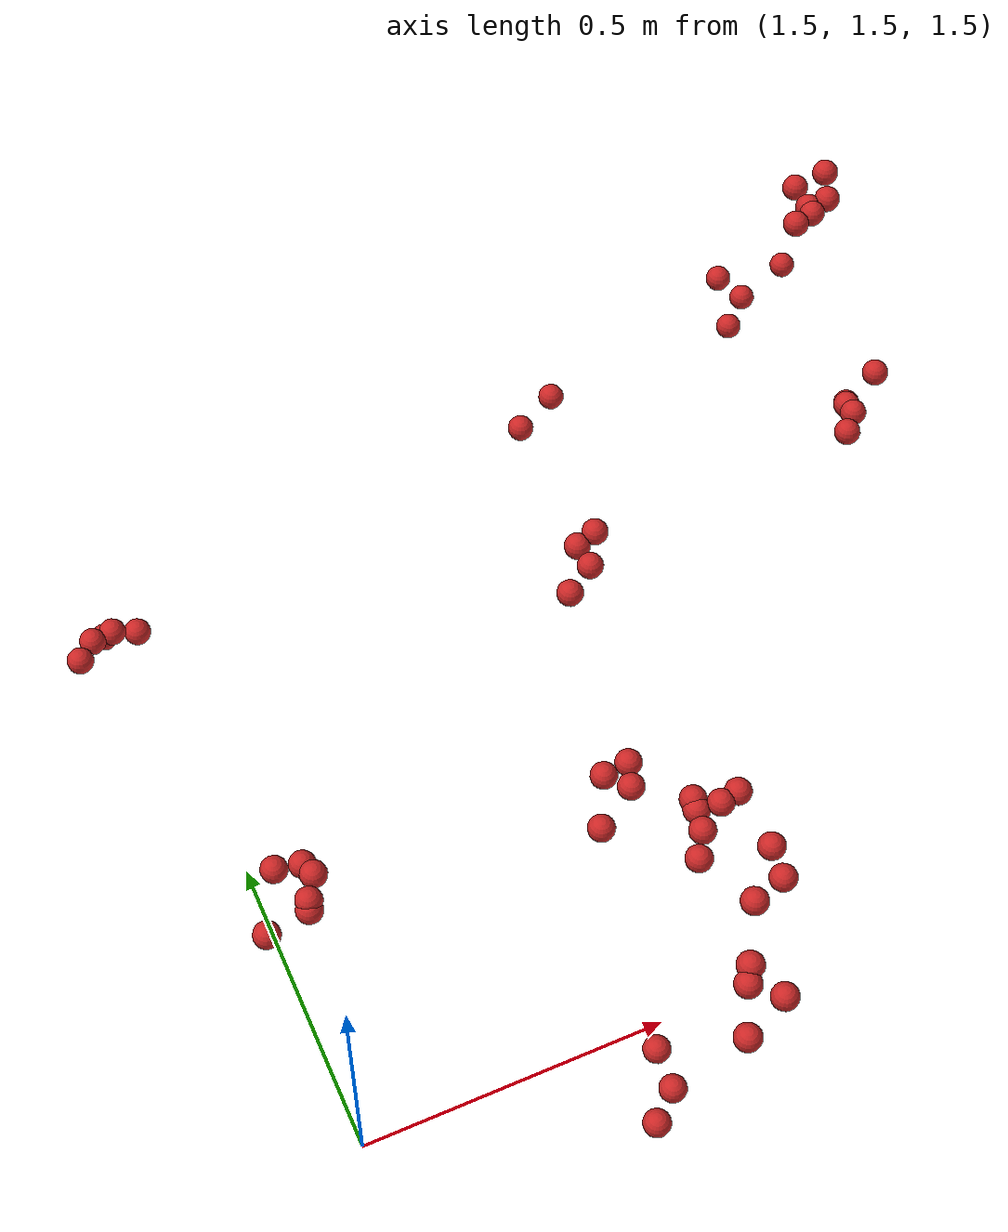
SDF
<sdf version="1.4">
 <model name="fruit_population">
  <static>true</static>
  <link name="fruit_7">
   <pose>2.6878377789477517 2.65717909088936 1.5607090375136565 0 0 0</pose>
   <collision name="fruit_collision_7"><geometry><sphere><radius>0.022</radius></sphere></geometry></collision>
   <visual name="visual">
    <geometry><sphere><radius>0.022</radius></sphere></geometry>
    <material><script><name>Gazebo/Red</name></script></material>
   </visual>
   <inertial>
    <mass>0.05</mass>
    <inertia>
     <ixx>9.679999999999999e-06</ixx>
     <ixy>0.0</ixy>
     <ixz>0.0</ixz>
     <iyy>9.679999999999999e-06</iyy>
     <iyz>0.0</iyz>
     <izz>9.679999999999999e-06</izz>
    </inertia>
   </inertial>
   <sensor name="fruit_contact_7" type="contact">
    <plugin name="contact_plugin_7" filename="libcontact_plugin.so"/>
    <contact><collision>fruit_collision_7</collision><topic>fruit_contact_topic_7</topic></contact>
   </sensor>
  </link>
  <link name="fruit_33">
   <pose>2.228750725210786 2.5594825535161543 1.6158335749436896 0 0 0</pose>
   <collision name="fruit_collision_33"><geometry><sphere><radius>0.022</radius></sphere></geometry></collision>
   <visual name="visual">
    <geometry><sphere><radius>0.022</radius></sphere></geometry>
    <material><script><name>Gazebo/Red</name></script></material>
   </visual>
   <inertial>
    <mass>0.05</mass>
    <inertia>
     <ixx>9.679999999999999e-06</ixx>
     <ixy>0.0</ixy>
     <ixz>0.0</ixz>
     <iyy>9.679999999999999e-06</iyy>
     <iyz>0.0</iyz>
     <izz>9.679999999999999e-06</izz>
    </inertia>
   </inertial>
   <sensor name="fruit_contact_33" type="contact">
    <plugin name="contact_plugin_33" filename="libcontact_plugin.so"/>
    <contact><collision>fruit_collision_33</collision><topic>fruit_contact_topic_33</topic></contact>
   </sensor>
  </link>
  <link name="fruit_36">
   <pose>2.1398747497981763 1.5151222651574094 1.7920669316583522 0 0 0</pose>
   <collision name="fruit_collision_36"><geometry><sphere><radius>0.022</radius></sphere></geometry></collision>
   <visual name="visual">
    <geometry><sphere><radius>0.022</radius></sphere></geometry>
    <material><script><name>Gazebo/Red</name></script></material>
   </visual>
   <inertial>
    <mass>0.05</mass>
    <inertia>
     <ixx>9.679999999999999e-06</ixx>
     <ixy>0.0</ixy>
     <ixz>0.0</ixz>
     <iyy>9.679999999999999e-06</iyy>
     <iyz>0.0</iyz>
     <izz>9.679999999999999e-06</izz>
    </inertia>
   </inertial>
   <sensor name="fruit_contact_36" type="contact">
    <plugin name="contact_plugin_36" filename="libcontact_plugin.so"/>
    <contact><collision>fruit_collision_36</collision><topic>fruit_contact_topic_36</topic></contact>
   </sensor>
  </link>
  <link name="fruit_49">
   <pose>2.825470624450276 2.7202413466090163 1.5991248190116685 0 0 0</pose>
   <collision name="fruit_collision_49"><geometry><sphere><radius>0.022</radius></sphere></geometry></collision>
   <visual name="visual">
    <geometry><sphere><radius>0.022</radius></sphere></geometry>
    <material><script><name>Gazebo/Red</name></script></material>
   </visual>
   <inertial>
    <mass>0.05</mass>
    <inertia>
     <ixx>9.679999999999999e-06</ixx>
     <ixy>0.0</ixy>
     <ixz>0.0</ixz>
     <iyy>9.679999999999999e-06</iyy>
     <iyz>0.0</iyz>
     <izz>9.679999999999999e-06</izz>
    </inertia>
   </inertial>
   <sensor name="fruit_contact_49" type="contact">
    <plugin name="contact_plugin_49" filename="libcontact_plugin.so"/>
    <contact><collision>fruit_collision_49</collision><topic>fruit_contact_topic_49</topic></contact>
   </sensor>
  </link>
  <link name="fruit_67">
   <pose>1.4707426005631568 1.7843473274949775 1.716479959698732 0 0 0</pose>
   <collision name="fruit_collision_67"><geometry><sphere><radius>0.022</radius></sphere></geometry></collision>
   <visual name="visual">
    <geometry><sphere><radius>0.022</radius></sphere></geometry>
    <material><script><name>Gazebo/Red</name></script></material>
   </visual>
   <inertial>
    <mass>0.05</mass>
    <inertia>
     <ixx>9.679999999999999e-06</ixx>
     <ixy>0.0</ixy>
     <ixz>0.0</ixz>
     <iyy>9.679999999999999e-06</iyy>
     <iyz>0.0</iyz>
     <izz>9.679999999999999e-06</izz>
    </inertia>
   </inertial>
   <sensor name="fruit_contact_67" type="contact">
    <plugin name="contact_plugin_67" filename="libcontact_plugin.so"/>
    <contact><collision>fruit_collision_67</collision><topic>fruit_contact_topic_67</topic></contact>
   </sensor>
  </link>
  <link name="fruit_82">
   <pose>2.692567068583775 2.720249485864434 1.6238045855684062 0 0 0</pose>
   <collision name="fruit_collision_82"><geometry><sphere><radius>0.022</radius></sphere></geometry></collision>
   <visual name="visual">
    <geometry><sphere><radius>0.022</radius></sphere></geometry>
    <material><script><name>Gazebo/Red</name></script></material>
   </visual>
   <inertial>
    <mass>0.05</mass>
    <inertia>
     <ixx>9.679999999999999e-06</ixx>
     <ixy>0.0</ixy>
     <ixz>0.0</ixz>
     <iyy>9.679999999999999e-06</iyy>
     <iyz>0.0</iyz>
     <izz>9.679999999999999e-06</izz>
    </inertia>
   </inertial>
   <sensor name="fruit_contact_82" type="contact">
    <plugin name="contact_plugin_82" filename="libcontact_plugin.so"/>
    <contact><collision>fruit_collision_82</collision><topic>fruit_contact_topic_82</topic></contact>
   </sensor>
  </link>
  <link name="fruit_98">
   <pose>2.040218135614302 1.3355500570118155 1.770911360810702 0 0 0</pose>
   <collision name="fruit_collision_98"><geometry><sphere><radius>0.022</radius></sphere></geometry></collision>
   <visual name="visual">
    <geometry><sphere><radius>0.022</radius></sphere></geometry>
    <material><script><name>Gazebo/Red</name></script></material>
   </visual>
   <inertial>
    <mass>0.05</mass>
    <inertia>
     <ixx>9.679999999999999e-06</ixx>
     <ixy>0.0</ixy>
     <ixz>0.0</ixz>
     <iyy>9.679999999999999e-06</iyy>
     <iyz>0.0</iyz>
     <izz>9.679999999999999e-06</izz>
    </inertia>
   </inertial>
   <sensor name="fruit_contact_98" type="contact">
    <plugin name="contact_plugin_98" filename="libcontact_plugin.so"/>
    <contact><collision>fruit_collision_98</collision><topic>fruit_contact_topic_98</topic></contact>
   </sensor>
  </link>
  <link name="fruit_112">
   <pose>1.9082931196733088 1.3338297653121898 1.5729157831949776 0 0 0</pose>
   <collision name="fruit_collision_112"><geometry><sphere><radius>0.022</radius></sphere></geometry></collision>
   <visual name="visual">
    <geometry><sphere><radius>0.022</radius></sphere></geometry>
    <material><script><name>Gazebo/Red</name></script></material>
   </visual>
   <inertial>
    <mass>0.05</mass>
    <inertia>
     <ixx>9.679999999999999e-06</ixx>
     <ixy>0.0</ixy>
     <ixz>0.0</ixz>
     <iyy>9.679999999999999e-06</iyy>
     <iyz>0.0</iyz>
     <izz>9.679999999999999e-06</izz>
    </inertia>
   </inertial>
   <sensor name="fruit_contact_112" type="contact">
    <plugin name="contact_plugin_112" filename="libcontact_plugin.so"/>
    <contact><collision>fruit_collision_112</collision><topic>fruit_contact_topic_112</topic></contact>
   </sensor>
  </link>
  <link name="fruit_130">
   <pose>1.9980076295625533 1.7386848390879048 1.7358896085003628 0 0 0</pose>
   <collision name="fruit_collision_130"><geometry><sphere><radius>0.022</radius></sphere></geometry></collision>
   <visual name="visual">
    <geometry><sphere><radius>0.022</radius></sphere></geometry>
    <material><script><name>Gazebo/Red</name></script></material>
   </visual>
   <inertial>
    <mass>0.05</mass>
    <inertia>
     <ixx>9.679999999999999e-06</ixx>
     <ixy>0.0</ixy>
     <ixz>0.0</ixz>
     <iyy>9.679999999999999e-06</iyy>
     <iyz>0.0</iyz>
     <izz>9.679999999999999e-06</izz>
    </inertia>
   </inertial>
   <sensor name="fruit_contact_130" type="contact">
    <plugin name="contact_plugin_130" filename="libcontact_plugin.so"/>
    <contact><collision>fruit_collision_130</collision><topic>fruit_contact_topic_130</topic></contact>
   </sensor>
  </link>
  <link name="fruit_135">
   <pose>2.6971206327810404 2.2576365050147094 1.7267678126645432 0 0 0</pose>
   <collision name="fruit_collision_135"><geometry><sphere><radius>0.022</radius></sphere></geometry></collision>
   <visual name="visual">
    <geometry><sphere><radius>0.022</radius></sphere></geometry>
    <material><script><name>Gazebo/Red</name></script></material>
   </visual>
   <inertial>
    <mass>0.05</mass>
    <inertia>
     <ixx>9.679999999999999e-06</ixx>
     <ixy>0.0</ixy>
     <ixz>0.0</ixz>
     <iyy>9.679999999999999e-06</iyy>
     <iyz>0.0</iyz>
     <izz>9.679999999999999e-06</izz>
    </inertia>
   </inertial>
   <sensor name="fruit_contact_135" type="contact">
    <plugin name="contact_plugin_135" filename="libcontact_plugin.so"/>
    <contact><collision>fruit_collision_135</collision><topic>fruit_contact_topic_135</topic></contact>
   </sensor>
  </link>
  <link name="fruit_143">
   <pose>1.3717947149029253 2.4015358258951425 1.633728720028379 0 0 0</pose>
   <collision name="fruit_collision_143"><geometry><sphere><radius>0.022</radius></sphere></geometry></collision>
   <visual name="visual">
    <geometry><sphere><radius>0.022</radius></sphere></geometry>
    <material><script><name>Gazebo/Red</name></script></material>
   </visual>
   <inertial>
    <mass>0.05</mass>
    <inertia>
     <ixx>9.679999999999999e-06</ixx>
     <ixy>0.0</ixy>
     <ixz>0.0</ixz>
     <iyy>9.679999999999999e-06</iyy>
     <iyz>0.0</iyz>
     <izz>9.679999999999999e-06</izz>
    </inertia>
   </inertial>
   <sensor name="fruit_contact_143" type="contact">
    <plugin name="contact_plugin_143" filename="libcontact_plugin.so"/>
    <contact><collision>fruit_collision_143</collision><topic>fruit_contact_topic_143</topic></contact>
   </sensor>
  </link>
  <link name="fruit_147">
   <pose>2.128150961560505 2.1391113823533754 1.7445361441673168 0 0 0</pose>
   <collision name="fruit_collision_147"><geometry><sphere><radius>0.022</radius></sphere></geometry></collision>
   <visual name="visual">
    <geometry><sphere><radius>0.022</radius></sphere></geometry>
    <material><script><name>Gazebo/Red</name></script></material>
   </visual>
   <inertial>
    <mass>0.05</mass>
    <inertia>
     <ixx>9.679999999999999e-06</ixx>
     <ixy>0.0</ixy>
     <ixz>0.0</ixz>
     <iyy>9.679999999999999e-06</iyy>
     <iyz>0.0</iyz>
     <izz>9.679999999999999e-06</izz>
    </inertia>
   </inertial>
   <sensor name="fruit_contact_147" type="contact">
    <plugin name="contact_plugin_147" filename="libcontact_plugin.so"/>
    <contact><collision>fruit_collision_147</collision><topic>fruit_contact_topic_147</topic></contact>
   </sensor>
  </link>
  <link name="fruit_158">
   <pose>2.759339241133709 2.5987546056003437 1.8682927733592065 0 0 0</pose>
   <collision name="fruit_collision_158"><geometry><sphere><radius>0.022</radius></sphere></geometry></collision>
   <visual name="visual">
    <geometry><sphere><radius>0.022</radius></sphere></geometry>
    <material><script><name>Gazebo/Red</name></script></material>
   </visual>
   <inertial>
    <mass>0.05</mass>
    <inertia>
     <ixx>9.679999999999999e-06</ixx>
     <ixy>0.0</ixy>
     <ixz>0.0</ixz>
     <iyy>9.679999999999999e-06</iyy>
     <iyz>0.0</iyz>
     <izz>9.679999999999999e-06</izz>
    </inertia>
   </inertial>
   <sensor name="fruit_contact_158" type="contact">
    <plugin name="contact_plugin_158" filename="libcontact_plugin.so"/>
    <contact><collision>fruit_collision_158</collision><topic>fruit_contact_topic_158</topic></contact>
   </sensor>
  </link>
  <link name="fruit_160">
   <pose>2.1108115886421435 1.6323285464832058 1.7385488118603192 0 0 0</pose>
   <collision name="fruit_collision_160"><geometry><sphere><radius>0.022</radius></sphere></geometry></collision>
   <visual name="visual">
    <geometry><sphere><radius>0.022</radius></sphere></geometry>
    <material><script><name>Gazebo/Red</name></script></material>
   </visual>
   <inertial>
    <mass>0.05</mass>
    <inertia>
     <ixx>9.679999999999999e-06</ixx>
     <ixy>0.0</ixy>
     <ixz>0.0</ixz>
     <iyy>9.679999999999999e-06</iyy>
     <iyz>0.0</iyz>
     <izz>9.679999999999999e-06</izz>
    </inertia>
   </inertial>
   <sensor name="fruit_contact_160" type="contact">
    <plugin name="contact_plugin_160" filename="libcontact_plugin.so"/>
    <contact><collision>fruit_collision_160</collision><topic>fruit_contact_topic_160</topic></contact>
   </sensor>
  </link>
  <link name="fruit_182">
   <pose>2.7412957508836677 2.709510969038853 1.5591657969025043 0 0 0</pose>
   <collision name="fruit_collision_182"><geometry><sphere><radius>0.022</radius></sphere></geometry></collision>
   <visual name="visual">
    <geometry><sphere><radius>0.022</radius></sphere></geometry>
    <material><script><name>Gazebo/Red</name></script></material>
   </visual>
   <inertial>
    <mass>0.05</mass>
    <inertia>
     <ixx>9.679999999999999e-06</ixx>
     <ixy>0.0</ixy>
     <ixz>0.0</ixz>
     <iyy>9.679999999999999e-06</iyy>
     <iyz>0.0</iyz>
     <izz>9.679999999999999e-06</izz>
    </inertia>
   </inertial>
   <sensor name="fruit_contact_182" type="contact">
    <plugin name="contact_plugin_182" filename="libcontact_plugin.so"/>
    <contact><collision>fruit_collision_182</collision><topic>fruit_contact_topic_182</topic></contact>
   </sensor>
  </link>
  <link name="fruit_192">
   <pose>1.9555287281845095 1.3758873245733318 1.5644335605927084 0 0 0</pose>
   <collision name="fruit_collision_192"><geometry><sphere><radius>0.022</radius></sphere></geometry></collision>
   <visual name="visual">
    <geometry><sphere><radius>0.022</radius></sphere></geometry>
    <material><script><name>Gazebo/Red</name></script></material>
   </visual>
   <inertial>
    <mass>0.05</mass>
    <inertia>
     <ixx>9.679999999999999e-06</ixx>
     <ixy>0.0</ixy>
     <ixz>0.0</ixz>
     <iyy>9.679999999999999e-06</iyy>
     <iyz>0.0</iyz>
     <izz>9.679999999999999e-06</izz>
    </inertia>
   </inertial>
   <sensor name="fruit_contact_192" type="contact">
    <plugin name="contact_plugin_192" filename="libcontact_plugin.so"/>
    <contact><collision>fruit_collision_192</collision><topic>fruit_contact_topic_192</topic></contact>
   </sensor>
  </link>
  <link name="fruit_195">
   <pose>2.141384548640964 1.6795247745812223 1.7232607953254342 0 0 0</pose>
   <collision name="fruit_collision_195"><geometry><sphere><radius>0.022</radius></sphere></geometry></collision>
   <visual name="visual">
    <geometry><sphere><radius>0.022</radius></sphere></geometry>
    <material><script><name>Gazebo/Red</name></script></material>
   </visual>
   <inertial>
    <mass>0.05</mass>
    <inertia>
     <ixx>9.679999999999999e-06</ixx>
     <ixy>0.0</ixy>
     <ixz>0.0</ixz>
     <iyy>9.679999999999999e-06</iyy>
     <iyz>0.0</iyz>
     <izz>9.679999999999999e-06</izz>
    </inertia>
   </inertial>
   <sensor name="fruit_contact_195" type="contact">
    <plugin name="contact_plugin_195" filename="libcontact_plugin.so"/>
    <contact><collision>fruit_collision_195</collision><topic>fruit_contact_topic_195</topic></contact>
   </sensor>
  </link>
  <link name="fruit_212">
   <pose>2.121077983019319 1.3742574146882327 1.759902697189863 0 0 0</pose>
   <collision name="fruit_collision_212"><geometry><sphere><radius>0.022</radius></sphere></geometry></collision>
   <visual name="visual">
    <geometry><sphere><radius>0.022</radius></sphere></geometry>
    <material><script><name>Gazebo/Red</name></script></material>
   </visual>
   <inertial>
    <mass>0.05</mass>
    <inertia>
     <ixx>9.679999999999999e-06</ixx>
     <ixy>0.0</ixy>
     <ixz>0.0</ixz>
     <iyy>9.679999999999999e-06</iyy>
     <iyz>0.0</iyz>
     <izz>9.679999999999999e-06</izz>
    </inertia>
   </inertial>
   <sensor name="fruit_contact_212" type="contact">
    <plugin name="contact_plugin_212" filename="libcontact_plugin.so"/>
    <contact><collision>fruit_collision_212</collision><topic>fruit_contact_topic_212</topic></contact>
   </sensor>
  </link>
  <link name="fruit_221">
   <pose>1.5500011627084553 1.8176296369331786 1.7052480062217739 0 0 0</pose>
   <collision name="fruit_collision_221"><geometry><sphere><radius>0.022</radius></sphere></geometry></collision>
   <visual name="visual">
    <geometry><sphere><radius>0.022</radius></sphere></geometry>
    <material><script><name>Gazebo/Red</name></script></material>
   </visual>
   <inertial>
    <mass>0.05</mass>
    <inertia>
     <ixx>9.679999999999999e-06</ixx>
     <ixy>0.0</ixy>
     <ixz>0.0</ixz>
     <iyy>9.679999999999999e-06</iyy>
     <iyz>0.0</iyz>
     <izz>9.679999999999999e-06</izz>
    </inertia>
   </inertial>
   <sensor name="fruit_contact_221" type="contact">
    <plugin name="contact_plugin_221" filename="libcontact_plugin.so"/>
    <contact><collision>fruit_collision_221</collision><topic>fruit_contact_topic_221</topic></contact>
   </sensor>
  </link>
  <link name="fruit_238">
   <pose>1.5712952291406255 1.852277270240812 1.7131317480939332 0 0 0</pose>
   <collision name="fruit_collision_238"><geometry><sphere><radius>0.022</radius></sphere></geometry></collision>
   <visual name="visual">
    <geometry><sphere><radius>0.022</radius></sphere></geometry>
    <material><script><name>Gazebo/Red</name></script></material>
   </visual>
   <inertial>
    <mass>0.05</mass>
    <inertia>
     <ixx>9.679999999999999e-06</ixx>
     <ixy>0.0</ixy>
     <ixz>0.0</ixz>
     <iyy>9.679999999999999e-06</iyy>
     <iyz>0.0</iyz>
     <izz>9.679999999999999e-06</izz>
    </inertia>
   </inertial>
   <sensor name="fruit_contact_238" type="contact">
    <plugin name="contact_plugin_238" filename="libcontact_plugin.so"/>
    <contact><collision>fruit_collision_238</collision><topic>fruit_contact_topic_238</topic></contact>
   </sensor>
  </link>
  <link name="fruit_240">
   <pose>2.182633627982203 2.229025767099097 1.724867717126115 0 0 0</pose>
   <collision name="fruit_collision_240"><geometry><sphere><radius>0.022</radius></sphere></geometry></collision>
   <visual name="visual">
    <geometry><sphere><radius>0.022</radius></sphere></geometry>
    <material><script><name>Gazebo/Red</name></script></material>
   </visual>
   <inertial>
    <mass>0.05</mass>
    <inertia>
     <ixx>9.679999999999999e-06</ixx>
     <ixy>0.0</ixy>
     <ixz>0.0</ixz>
     <iyy>9.679999999999999e-06</iyy>
     <iyz>0.0</iyz>
     <izz>9.679999999999999e-06</izz>
    </inertia>
   </inertial>
   <sensor name="fruit_contact_240" type="contact">
    <plugin name="contact_plugin_240" filename="libcontact_plugin.so"/>
    <contact><collision>fruit_collision_240</collision><topic>fruit_contact_topic_240</topic></contact>
   </sensor>
  </link>
  <link name="fruit_262">
   <pose>1.4770150217452438 2.427900177549493 1.6173005529777553 0 0 0</pose>
   <collision name="fruit_collision_262"><geometry><sphere><radius>0.022</radius></sphere></geometry></collision>
   <visual name="visual">
    <geometry><sphere><radius>0.022</radius></sphere></geometry>
    <material><script><name>Gazebo/Red</name></script></material>
   </visual>
   <inertial>
    <mass>0.05</mass>
    <inertia>
     <ixx>9.679999999999999e-06</ixx>
     <ixy>0.0</ixy>
     <ixz>0.0</ixz>
     <iyy>9.679999999999999e-06</iyy>
     <iyz>0.0</iyz>
     <izz>9.679999999999999e-06</izz>
    </inertia>
   </inertial>
   <sensor name="fruit_contact_262" type="contact">
    <plugin name="contact_plugin_262" filename="libcontact_plugin.so"/>
    <contact><collision>fruit_collision_262</collision><topic>fruit_contact_topic_262</topic></contact>
   </sensor>
  </link>
  <link name="fruit_287">
   <pose>1.424617881297526 2.44302504123975 1.6121443981400114 0 0 0</pose>
   <collision name="fruit_collision_287"><geometry><sphere><radius>0.022</radius></sphere></geometry></collision>
   <visual name="visual">
    <geometry><sphere><radius>0.022</radius></sphere></geometry>
    <material><script><name>Gazebo/Red</name></script></material>
   </visual>
   <inertial>
    <mass>0.05</mass>
    <inertia>
     <ixx>9.679999999999999e-06</ixx>
     <ixy>0.0</ixy>
     <ixz>0.0</ixz>
     <iyy>9.679999999999999e-06</iyy>
     <iyz>0.0</iyz>
     <izz>9.679999999999999e-06</izz>
    </inertia>
   </inertial>
   <sensor name="fruit_contact_287" type="contact">
    <plugin name="contact_plugin_287" filename="libcontact_plugin.so"/>
    <contact><collision>fruit_collision_287</collision><topic>fruit_contact_topic_287</topic></contact>
   </sensor>
  </link>
  <link name="fruit_292">
   <pose>2.800455494222293 2.3506430652000065 1.726479108284404 0 0 0</pose>
   <collision name="fruit_collision_292"><geometry><sphere><radius>0.022</radius></sphere></geometry></collision>
   <visual name="visual">
    <geometry><sphere><radius>0.022</radius></sphere></geometry>
    <material><script><name>Gazebo/Red</name></script></material>
   </visual>
   <inertial>
    <mass>0.05</mass>
    <inertia>
     <ixx>9.679999999999999e-06</ixx>
     <ixy>0.0</ixy>
     <ixz>0.0</ixz>
     <iyy>9.679999999999999e-06</iyy>
     <iyz>0.0</iyz>
     <izz>9.679999999999999e-06</izz>
    </inertia>
   </inertial>
   <sensor name="fruit_contact_292" type="contact">
    <plugin name="contact_plugin_292" filename="libcontact_plugin.so"/>
    <contact><collision>fruit_collision_292</collision><topic>fruit_contact_topic_292</topic></contact>
   </sensor>
  </link>
  <link name="fruit_299">
   <pose>1.546014185765811 1.8067125797668904 1.6952398380398888 0 0 0</pose>
   <collision name="fruit_collision_299"><geometry><sphere><radius>0.022</radius></sphere></geometry></collision>
   <visual name="visual">
    <geometry><sphere><radius>0.022</radius></sphere></geometry>
    <material><script><name>Gazebo/Red</name></script></material>
   </visual>
   <inertial>
    <mass>0.05</mass>
    <inertia>
     <ixx>9.679999999999999e-06</ixx>
     <ixy>0.0</ixy>
     <ixz>0.0</ixz>
     <iyy>9.679999999999999e-06</iyy>
     <iyz>0.0</iyz>
     <izz>9.679999999999999e-06</izz>
    </inertia>
   </inertial>
   <sensor name="fruit_contact_299" type="contact">
    <plugin name="contact_plugin_299" filename="libcontact_plugin.so"/>
    <contact><collision>fruit_collision_299</collision><topic>fruit_contact_topic_299</topic></contact>
   </sensor>
  </link>
  <link name="fruit_310">
   <pose>2.8596059125435827 2.682697018531017 1.8681207261139319 0 0 0</pose>
   <collision name="fruit_collision_310"><geometry><sphere><radius>0.022</radius></sphere></geometry></collision>
   <visual name="visual">
    <geometry><sphere><radius>0.022</radius></sphere></geometry>
    <material><script><name>Gazebo/Red</name></script></material>
   </visual>
   <inertial>
    <mass>0.05</mass>
    <inertia>
     <ixx>9.679999999999999e-06</ixx>
     <ixy>0.0</ixy>
     <ixz>0.0</ixz>
     <iyy>9.679999999999999e-06</iyy>
     <iyz>0.0</iyz>
     <izz>9.679999999999999e-06</izz>
    </inertia>
   </inertial>
   <sensor name="fruit_contact_310" type="contact">
    <plugin name="contact_plugin_310" filename="libcontact_plugin.so"/>
    <contact><collision>fruit_collision_310</collision><topic>fruit_contact_topic_310</topic></contact>
   </sensor>
  </link>
  <link name="fruit_328">
   <pose>2.2164846900648922 1.711804614171264 1.7376265220666565 0 0 0</pose>
   <collision name="fruit_collision_328"><geometry><sphere><radius>0.022</radius></sphere></geometry></collision>
   <visual name="visual">
    <geometry><sphere><radius>0.022</radius></sphere></geometry>
    <material><script><name>Gazebo/Red</name></script></material>
   </visual>
   <inertial>
    <mass>0.05</mass>
    <inertia>
     <ixx>9.679999999999999e-06</ixx>
     <ixy>0.0</ixy>
     <ixz>0.0</ixz>
     <iyy>9.679999999999999e-06</iyy>
     <iyz>0.0</iyz>
     <izz>9.679999999999999e-06</izz>
    </inertia>
   </inertial>
   <sensor name="fruit_contact_328" type="contact">
    <plugin name="contact_plugin_328" filename="libcontact_plugin.so"/>
    <contact><collision>fruit_collision_328</collision><topic>fruit_contact_topic_328</topic></contact>
   </sensor>
  </link>
  <link name="fruit_350">
   <pose>2.150673295757123 1.7325458550785493 1.7262456521333107 0 0 0</pose>
   <collision name="fruit_collision_350"><geometry><sphere><radius>0.022</radius></sphere></geometry></collision>
   <visual name="visual">
    <geometry><sphere><radius>0.022</radius></sphere></geometry>
    <material><script><name>Gazebo/Red</name></script></material>
   </visual>
   <inertial>
    <mass>0.05</mass>
    <inertia>
     <ixx>9.679999999999999e-06</ixx>
     <ixy>0.0</ixy>
     <ixz>0.0</ixz>
     <iyy>9.679999999999999e-06</iyy>
     <iyz>0.0</iyz>
     <izz>9.679999999999999e-06</izz>
    </inertia>
   </inertial>
   <sensor name="fruit_contact_350" type="contact">
    <plugin name="contact_plugin_350" filename="libcontact_plugin.so"/>
    <contact><collision>fruit_collision_350</collision><topic>fruit_contact_topic_350</topic></contact>
   </sensor>
  </link>
  <link name="fruit_351">
   <pose>2.8063882895443006 2.6396216208304977 1.8481310286398098 0 0 0</pose>
   <collision name="fruit_collision_351"><geometry><sphere><radius>0.022</radius></sphere></geometry></collision>
   <visual name="visual">
    <geometry><sphere><radius>0.022</radius></sphere></geometry>
    <material><script><name>Gazebo/Red</name></script></material>
   </visual>
   <inertial>
    <mass>0.05</mass>
    <inertia>
     <ixx>9.679999999999999e-06</ixx>
     <ixy>0.0</ixy>
     <ixz>0.0</ixz>
     <iyy>9.679999999999999e-06</iyy>
     <iyz>0.0</iyz>
     <izz>9.679999999999999e-06</izz>
    </inertia>
   </inertial>
   <sensor name="fruit_contact_351" type="contact">
    <plugin name="contact_plugin_351" filename="libcontact_plugin.so"/>
    <contact><collision>fruit_collision_351</collision><topic>fruit_contact_topic_351</topic></contact>
   </sensor>
  </link>
  <link name="fruit_360">
   <pose>1.5212338517888424 1.892105474237053 1.6944851522997493 0 0 0</pose>
   <collision name="fruit_collision_360"><geometry><sphere><radius>0.022</radius></sphere></geometry></collision>
   <visual name="visual">
    <geometry><sphere><radius>0.022</radius></sphere></geometry>
    <material><script><name>Gazebo/Red</name></script></material>
   </visual>
   <inertial>
    <mass>0.05</mass>
    <inertia>
     <ixx>9.679999999999999e-06</ixx>
     <ixy>0.0</ixy>
     <ixz>0.0</ixz>
     <iyy>9.679999999999999e-06</iyy>
     <iyz>0.0</iyz>
     <izz>9.679999999999999e-06</izz>
    </inertia>
   </inertial>
   <sensor name="fruit_contact_360" type="contact">
    <plugin name="contact_plugin_360" filename="libcontact_plugin.so"/>
    <contact><collision>fruit_collision_360</collision><topic>fruit_contact_topic_360</topic></contact>
   </sensor>
  </link>
  <link name="fruit_393">
   <pose>2.2092132064779078 1.5924222894018436 1.7750208612304192 0 0 0</pose>
   <collision name="fruit_collision_393"><geometry><sphere><radius>0.022</radius></sphere></geometry></collision>
   <visual name="visual">
    <geometry><sphere><radius>0.022</radius></sphere></geometry>
    <material><script><name>Gazebo/Red</name></script></material>
   </visual>
   <inertial>
    <mass>0.05</mass>
    <inertia>
     <ixx>9.679999999999999e-06</ixx>
     <ixy>0.0</ixy>
     <ixz>0.0</ixz>
     <iyy>9.679999999999999e-06</iyy>
     <iyz>0.0</iyz>
     <izz>9.679999999999999e-06</izz>
    </inertia>
   </inertial>
   <sensor name="fruit_contact_393" type="contact">
    <plugin name="contact_plugin_393" filename="libcontact_plugin.so"/>
    <contact><collision>fruit_collision_393</collision><topic>fruit_contact_topic_393</topic></contact>
   </sensor>
  </link>
  <link name="fruit_429">
   <pose>1.563514479274117 1.8807972330321567 1.6997070648263024 0 0 0</pose>
   <collision name="fruit_collision_429"><geometry><sphere><radius>0.022</radius></sphere></geometry></collision>
   <visual name="visual">
    <geometry><sphere><radius>0.022</radius></sphere></geometry>
    <material><script><name>Gazebo/Red</name></script></material>
   </visual>
   <inertial>
    <mass>0.05</mass>
    <inertia>
     <ixx>9.679999999999999e-06</ixx>
     <ixy>0.0</ixy>
     <ixz>0.0</ixz>
     <iyy>9.679999999999999e-06</iyy>
     <iyz>0.0</iyz>
     <izz>9.679999999999999e-06</izz>
    </inertia>
   </inertial>
   <sensor name="fruit_contact_429" type="contact">
    <plugin name="contact_plugin_429" filename="libcontact_plugin.so"/>
    <contact><collision>fruit_collision_429</collision><topic>fruit_contact_topic_429</topic></contact>
   </sensor>
  </link>
  <link name="fruit_441">
   <pose>2.0426582487450347 1.824988071668383 1.724671437847301 0 0 0</pose>
   <collision name="fruit_collision_441"><geometry><sphere><radius>0.022</radius></sphere></geometry></collision>
   <visual name="visual">
    <geometry><sphere><radius>0.022</radius></sphere></geometry>
    <material><script><name>Gazebo/Red</name></script></material>
   </visual>
   <inertial>
    <mass>0.05</mass>
    <inertia>
     <ixx>9.679999999999999e-06</ixx>
     <ixy>0.0</ixy>
     <ixz>0.0</ixz>
     <iyy>9.679999999999999e-06</iyy>
     <iyz>0.0</iyz>
     <izz>9.679999999999999e-06</izz>
    </inertia>
   </inertial>
   <sensor name="fruit_contact_441" type="contact">
    <plugin name="contact_plugin_441" filename="libcontact_plugin.so"/>
    <contact><collision>fruit_collision_441</collision><topic>fruit_contact_topic_441</topic></contact>
   </sensor>
  </link>
  <link name="fruit_453">
   <pose>2.804413073403006 2.6219668475483804 1.8506328923378577 0 0 0</pose>
   <collision name="fruit_collision_453"><geometry><sphere><radius>0.022</radius></sphere></geometry></collision>
   <visual name="visual">
    <geometry><sphere><radius>0.022</radius></sphere></geometry>
    <material><script><name>Gazebo/Red</name></script></material>
   </visual>
   <inertial>
    <mass>0.05</mass>
    <inertia>
     <ixx>9.679999999999999e-06</ixx>
     <ixy>0.0</ixy>
     <ixz>0.0</ixz>
     <iyy>9.679999999999999e-06</iyy>
     <iyz>0.0</iyz>
     <izz>9.679999999999999e-06</izz>
    </inertia>
   </inertial>
   <sensor name="fruit_contact_453" type="contact">
    <plugin name="contact_plugin_453" filename="libcontact_plugin.so"/>
    <contact><collision>fruit_collision_453</collision><topic>fruit_contact_topic_453</topic></contact>
   </sensor>
  </link>
  <link name="fruit_483">
   <pose>2.7273404627147992 2.315144165774701 1.7179945724421424 0 0 0</pose>
   <collision name="fruit_collision_483"><geometry><sphere><radius>0.022</radius></sphere></geometry></collision>
   <visual name="visual">
    <geometry><sphere><radius>0.022</radius></sphere></geometry>
    <material><script><name>Gazebo/Red</name></script></material>
   </visual>
   <inertial>
    <mass>0.05</mass>
    <inertia>
     <ixx>9.679999999999999e-06</ixx>
     <ixy>0.0</ixy>
     <ixz>0.0</ixz>
     <iyy>9.679999999999999e-06</iyy>
     <iyz>0.0</iyz>
     <izz>9.679999999999999e-06</izz>
    </inertia>
   </inertial>
   <sensor name="fruit_contact_483" type="contact">
    <plugin name="contact_plugin_483" filename="libcontact_plugin.so"/>
    <contact><collision>fruit_collision_483</collision><topic>fruit_contact_topic_483</topic></contact>
   </sensor>
  </link>
  <link name="fruit_496">
   <pose>2.733407645599903 2.3248757581431168 1.70699227204122 0 0 0</pose>
   <collision name="fruit_collision_496"><geometry><sphere><radius>0.022</radius></sphere></geometry></collision>
   <visual name="visual">
    <geometry><sphere><radius>0.022</radius></sphere></geometry>
    <material><script><name>Gazebo/Red</name></script></material>
   </visual>
   <inertial>
    <mass>0.05</mass>
    <inertia>
     <ixx>9.679999999999999e-06</ixx>
     <ixy>0.0</ixy>
     <ixz>0.0</ixz>
     <iyy>9.679999999999999e-06</iyy>
     <iyz>0.0</iyz>
     <izz>9.679999999999999e-06</izz>
    </inertia>
   </inertial>
   <sensor name="fruit_contact_496" type="contact">
    <plugin name="contact_plugin_496" filename="libcontact_plugin.so"/>
    <contact><collision>fruit_collision_496</collision><topic>fruit_contact_topic_496</topic></contact>
   </sensor>
  </link>
  <link name="fruit_518">
   <pose>2.0945978804691645 1.4345275892680436 1.7701872669580925 0 0 0</pose>
   <collision name="fruit_collision_518"><geometry><sphere><radius>0.022</radius></sphere></geometry></collision>
   <visual name="visual">
    <geometry><sphere><radius>0.022</radius></sphere></geometry>
    <material><script><name>Gazebo/Red</name></script></material>
   </visual>
   <inertial>
    <mass>0.05</mass>
    <inertia>
     <ixx>9.679999999999999e-06</ixx>
     <ixy>0.0</ixy>
     <ixz>0.0</ixz>
     <iyy>9.679999999999999e-06</iyy>
     <iyz>0.0</iyz>
     <izz>9.679999999999999e-06</izz>
    </inertia>
   </inertial>
   <sensor name="fruit_contact_518" type="contact">
    <plugin name="contact_plugin_518" filename="libcontact_plugin.so"/>
    <contact><collision>fruit_collision_518</collision><topic>fruit_contact_topic_518</topic></contact>
   </sensor>
  </link>
  <link name="fruit_554">
   <pose>2.308511624508535 2.6069205391366417 1.6071441385608682 0 0 0</pose>
   <collision name="fruit_collision_554"><geometry><sphere><radius>0.022</radius></sphere></geometry></collision>
   <visual name="visual">
    <geometry><sphere><radius>0.022</radius></sphere></geometry>
    <material><script><name>Gazebo/Red</name></script></material>
   </visual>
   <inertial>
    <mass>0.05</mass>
    <inertia>
     <ixx>9.679999999999999e-06</ixx>
     <ixy>0.0</ixy>
     <ixz>0.0</ixz>
     <iyy>9.679999999999999e-06</iyy>
     <iyz>0.0</iyz>
     <izz>9.679999999999999e-06</izz>
    </inertia>
   </inertial>
   <sensor name="fruit_contact_554" type="contact">
    <plugin name="contact_plugin_554" filename="libcontact_plugin.so"/>
    <contact><collision>fruit_collision_554</collision><topic>fruit_contact_topic_554</topic></contact>
   </sensor>
  </link>
  <link name="fruit_577">
   <pose>2.840606562603128 2.6366045688364115 1.8559978913235626 0 0 0</pose>
   <collision name="fruit_collision_577"><geometry><sphere><radius>0.022</radius></sphere></geometry></collision>
   <visual name="visual">
    <geometry><sphere><radius>0.022</radius></sphere></geometry>
    <material><script><name>Gazebo/Red</name></script></material>
   </visual>
   <inertial>
    <mass>0.05</mass>
    <inertia>
     <ixx>9.679999999999999e-06</ixx>
     <ixy>0.0</ixy>
     <ixz>0.0</ixz>
     <iyy>9.679999999999999e-06</iyy>
     <iyz>0.0</iyz>
     <izz>9.679999999999999e-06</izz>
    </inertia>
   </inertial>
   <sensor name="fruit_contact_577" type="contact">
    <plugin name="contact_plugin_577" filename="libcontact_plugin.so"/>
    <contact><collision>fruit_collision_577</collision><topic>fruit_contact_topic_577</topic></contact>
   </sensor>
  </link>
  <link name="fruit_596">
   <pose>2.726896557299664 2.2919740126694 1.723473153212258 0 0 0</pose>
   <collision name="fruit_collision_596"><geometry><sphere><radius>0.022</radius></sphere></geometry></collision>
   <visual name="visual">
    <geometry><sphere><radius>0.022</radius></sphere></geometry>
    <material><script><name>Gazebo/Red</name></script></material>
   </visual>
   <inertial>
    <mass>0.05</mass>
    <inertia>
     <ixx>9.679999999999999e-06</ixx>
     <ixy>0.0</ixy>
     <ixz>0.0</ixz>
     <iyy>9.679999999999999e-06</iyy>
     <iyz>0.0</iyz>
     <izz>9.679999999999999e-06</izz>
    </inertia>
   </inertial>
   <sensor name="fruit_contact_596" type="contact">
    <plugin name="contact_plugin_596" filename="libcontact_plugin.so"/>
    <contact><collision>fruit_collision_596</collision><topic>fruit_contact_topic_596</topic></contact>
   </sensor>
  </link>
  <link name="fruit_604">
   <pose>2.0889648318863463 1.8333488757471537 1.7187267336816974 0 0 0</pose>
   <collision name="fruit_collision_604"><geometry><sphere><radius>0.022</radius></sphere></geometry></collision>
   <visual name="visual">
    <geometry><sphere><radius>0.022</radius></sphere></geometry>
    <material><script><name>Gazebo/Red</name></script></material>
   </visual>
   <inertial>
    <mass>0.05</mass>
    <inertia>
     <ixx>9.679999999999999e-06</ixx>
     <ixy>0.0</ixy>
     <ixz>0.0</ixz>
     <iyy>9.679999999999999e-06</iyy>
     <iyz>0.0</iyz>
     <izz>9.679999999999999e-06</izz>
    </inertia>
   </inertial>
   <sensor name="fruit_contact_604" type="contact">
    <plugin name="contact_plugin_604" filename="libcontact_plugin.so"/>
    <contact><collision>fruit_collision_604</collision><topic>fruit_contact_topic_604</topic></contact>
   </sensor>
  </link>
  <link name="fruit_628">
   <pose>1.4020056254170876 2.4293994545374655 1.6326058373089396 0 0 0</pose>
   <collision name="fruit_collision_628"><geometry><sphere><radius>0.022</radius></sphere></geometry></collision>
   <visual name="visual">
    <geometry><sphere><radius>0.022</radius></sphere></geometry>
    <material><script><name>Gazebo/Red</name></script></material>
   </visual>
   <inertial>
    <mass>0.05</mass>
    <inertia>
     <ixx>9.679999999999999e-06</ixx>
     <ixy>0.0</ixy>
     <ixz>0.0</ixz>
     <iyy>9.679999999999999e-06</iyy>
     <iyz>0.0</iyz>
     <izz>9.679999999999999e-06</izz>
    </inertia>
   </inertial>
   <sensor name="fruit_contact_628" type="contact">
    <plugin name="contact_plugin_628" filename="libcontact_plugin.so"/>
    <contact><collision>fruit_collision_628</collision><topic>fruit_contact_topic_628</topic></contact>
   </sensor>
  </link>
  <link name="fruit_657">
   <pose>2.18247145141013 2.1789014691025033 1.736306937912143 0 0 0</pose>
   <collision name="fruit_collision_657"><geometry><sphere><radius>0.022</radius></sphere></geometry></collision>
   <visual name="visual">
    <geometry><sphere><radius>0.022</radius></sphere></geometry>
    <material><script><name>Gazebo/Red</name></script></material>
   </visual>
   <inertial>
    <mass>0.05</mass>
    <inertia>
     <ixx>9.679999999999999e-06</ixx>
     <ixy>0.0</ixy>
     <ixz>0.0</ixz>
     <iyy>9.679999999999999e-06</iyy>
     <iyz>0.0</iyz>
     <izz>9.679999999999999e-06</izz>
    </inertia>
   </inertial>
   <sensor name="fruit_contact_657" type="contact">
    <plugin name="contact_plugin_657" filename="libcontact_plugin.so"/>
    <contact><collision>fruit_collision_657</collision><topic>fruit_contact_topic_657</topic></contact>
   </sensor>
  </link>
  <link name="fruit_660">
   <pose>2.184617167740376 1.7057922075768184 1.7361607469675495 0 0 0</pose>
   <collision name="fruit_collision_660"><geometry><sphere><radius>0.022</radius></sphere></geometry></collision>
   <visual name="visual">
    <geometry><sphere><radius>0.022</radius></sphere></geometry>
    <material><script><name>Gazebo/Red</name></script></material>
   </visual>
   <inertial>
    <mass>0.05</mass>
    <inertia>
     <ixx>9.679999999999999e-06</ixx>
     <ixy>0.0</ixy>
     <ixz>0.0</ixz>
     <iyy>9.679999999999999e-06</iyy>
     <iyz>0.0</iyz>
     <izz>9.679999999999999e-06</izz>
    </inertia>
   </inertial>
   <sensor name="fruit_contact_660" type="contact">
    <plugin name="contact_plugin_660" filename="libcontact_plugin.so"/>
    <contact><collision>fruit_collision_660</collision><topic>fruit_contact_topic_660</topic></contact>
   </sensor>
  </link>
  <link name="fruit_690">
   <pose>1.9605917294378497 1.4422917952996466 1.5637853883805273 0 0 0</pose>
   <collision name="fruit_collision_690"><geometry><sphere><radius>0.022</radius></sphere></geometry></collision>
   <visual name="visual">
    <geometry><sphere><radius>0.022</radius></sphere></geometry>
    <material><script><name>Gazebo/Red</name></script></material>
   </visual>
   <inertial>
    <mass>0.05</mass>
    <inertia>
     <ixx>9.679999999999999e-06</ixx>
     <ixy>0.0</ixy>
     <ixz>0.0</ixz>
     <iyy>9.679999999999999e-06</iyy>
     <iyz>0.0</iyz>
     <izz>9.679999999999999e-06</izz>
    </inertia>
   </inertial>
   <sensor name="fruit_contact_690" type="contact">
    <plugin name="contact_plugin_690" filename="libcontact_plugin.so"/>
    <contact><collision>fruit_collision_690</collision><topic>fruit_contact_topic_690</topic></contact>
   </sensor>
  </link>
  <link name="fruit_700">
   <pose>2.2014590605088267 1.5393543980813589 1.7742394131663835 0 0 0</pose>
   <collision name="fruit_collision_700"><geometry><sphere><radius>0.022</radius></sphere></geometry></collision>
   <visual name="visual">
    <geometry><sphere><radius>0.022</radius></sphere></geometry>
    <material><script><name>Gazebo/Red</name></script></material>
   </visual>
   <inertial>
    <mass>0.05</mass>
    <inertia>
     <ixx>9.679999999999999e-06</ixx>
     <ixy>0.0</ixy>
     <ixz>0.0</ixz>
     <iyy>9.679999999999999e-06</iyy>
     <iyz>0.0</iyz>
     <izz>9.679999999999999e-06</izz>
    </inertia>
   </inertial>
   <sensor name="fruit_contact_700" type="contact">
    <plugin name="contact_plugin_700" filename="libcontact_plugin.so"/>
    <contact><collision>fruit_collision_700</collision><topic>fruit_contact_topic_700</topic></contact>
   </sensor>
  </link>
  <link name="fruit_713">
   <pose>2.802446709142791 2.6822831038927384 1.8557449583247707 0 0 0</pose>
   <collision name="fruit_collision_713"><geometry><sphere><radius>0.022</radius></sphere></geometry></collision>
   <visual name="visual">
    <geometry><sphere><radius>0.022</radius></sphere></geometry>
    <material><script><name>Gazebo/Red</name></script></material>
   </visual>
   <inertial>
    <mass>0.05</mass>
    <inertia>
     <ixx>9.679999999999999e-06</ixx>
     <ixy>0.0</ixy>
     <ixz>0.0</ixz>
     <iyy>9.679999999999999e-06</iyy>
     <iyz>0.0</iyz>
     <izz>9.679999999999999e-06</izz>
    </inertia>
   </inertial>
   <sensor name="fruit_contact_713" type="contact">
    <plugin name="contact_plugin_713" filename="libcontact_plugin.so"/>
    <contact><collision>fruit_collision_713</collision><topic>fruit_contact_topic_713</topic></contact>
   </sensor>
  </link>
  <link name="fruit_730">
   <pose>2.0802703862689595 1.4120472943227504 1.7622294617426693 0 0 0</pose>
   <collision name="fruit_collision_730"><geometry><sphere><radius>0.022</radius></sphere></geometry></collision>
   <visual name="visual">
    <geometry><sphere><radius>0.022</radius></sphere></geometry>
    <material><script><name>Gazebo/Red</name></script></material>
   </visual>
   <inertial>
    <mass>0.05</mass>
    <inertia>
     <ixx>9.679999999999999e-06</ixx>
     <ixy>0.0</ixy>
     <ixz>0.0</ixz>
     <iyy>9.679999999999999e-06</iyy>
     <iyz>0.0</iyz>
     <izz>9.679999999999999e-06</izz>
    </inertia>
   </inertial>
   <sensor name="fruit_contact_730" type="contact">
    <plugin name="contact_plugin_730" filename="libcontact_plugin.so"/>
    <contact><collision>fruit_collision_730</collision><topic>fruit_contact_topic_730</topic></contact>
   </sensor>
  </link>
  <link name="fruit_769">
   <pose>2.2170858790968833 2.2359753358991936 1.7368580697298428 0 0 0</pose>
   <collision name="fruit_collision_769"><geometry><sphere><radius>0.022</radius></sphere></geometry></collision>
   <visual name="visual">
    <geometry><sphere><radius>0.022</radius></sphere></geometry>
    <material><script><name>Gazebo/Red</name></script></material>
   </visual>
   <inertial>
    <mass>0.05</mass>
    <inertia>
     <ixx>9.679999999999999e-06</ixx>
     <ixy>0.0</ixy>
     <ixz>0.0</ixz>
     <iyy>9.679999999999999e-06</iyy>
     <iyz>0.0</iyz>
     <izz>9.679999999999999e-06</izz>
    </inertia>
   </inertial>
   <sensor name="fruit_contact_769" type="contact">
    <plugin name="contact_plugin_769" filename="libcontact_plugin.so"/>
    <contact><collision>fruit_collision_769</collision><topic>fruit_contact_topic_769</topic></contact>
   </sensor>
  </link>
  <link name="fruit_772">
   <pose>2.0759214774609136 1.7952139910371598 1.7146323712273022 0 0 0</pose>
   <collision name="fruit_collision_772"><geometry><sphere><radius>0.022</radius></sphere></geometry></collision>
   <visual name="visual">
    <geometry><sphere><radius>0.022</radius></sphere></geometry>
    <material><script><name>Gazebo/Red</name></script></material>
   </visual>
   <inertial>
    <mass>0.05</mass>
    <inertia>
     <ixx>9.679999999999999e-06</ixx>
     <ixy>0.0</ixy>
     <ixz>0.0</ixz>
     <iyy>9.679999999999999e-06</iyy>
     <iyz>0.0</iyz>
     <izz>9.679999999999999e-06</izz>
    </inertia>
   </inertial>
   <sensor name="fruit_contact_772" type="contact">
    <plugin name="contact_plugin_772" filename="libcontact_plugin.so"/>
    <contact><collision>fruit_collision_772</collision><topic>fruit_contact_topic_772</topic></contact>
   </sensor>
  </link>
  <link name="fruit_776">
   <pose>1.438037772743268 2.437096853423638 1.6283779030323127 0 0 0</pose>
   <collision name="fruit_collision_776"><geometry><sphere><radius>0.022</radius></sphere></geometry></collision>
   <visual name="visual">
    <geometry><sphere><radius>0.022</radius></sphere></geometry>
    <material><script><name>Gazebo/Red</name></script></material>
   </visual>
   <inertial>
    <mass>0.05</mass>
    <inertia>
     <ixx>9.679999999999999e-06</ixx>
     <ixy>0.0</ixy>
     <ixz>0.0</ixz>
     <iyy>9.679999999999999e-06</iyy>
     <iyz>0.0</iyz>
     <izz>9.679999999999999e-06</izz>
    </inertia>
   </inertial>
   <sensor name="fruit_contact_776" type="contact">
    <plugin name="contact_plugin_776" filename="libcontact_plugin.so"/>
    <contact><collision>fruit_collision_776</collision><topic>fruit_contact_topic_776</topic></contact>
   </sensor>
  </link>
  <link name="fruit_778">
   <pose>2.1485923796610575 1.7149158961021338 1.7228886076016212 0 0 0</pose>
   <collision name="fruit_collision_778"><geometry><sphere><radius>0.022</radius></sphere></geometry></collision>
   <visual name="visual">
    <geometry><sphere><radius>0.022</radius></sphere></geometry>
    <material><script><name>Gazebo/Red</name></script></material>
   </visual>
   <inertial>
    <mass>0.05</mass>
    <inertia>
     <ixx>9.679999999999999e-06</ixx>
     <ixy>0.0</ixy>
     <ixz>0.0</ixz>
     <iyy>9.679999999999999e-06</iyy>
     <iyz>0.0</iyz>
     <izz>9.679999999999999e-06</izz>
    </inertia>
   </inertial>
   <sensor name="fruit_contact_778" type="contact">
    <plugin name="contact_plugin_778" filename="libcontact_plugin.so"/>
    <contact><collision>fruit_collision_778</collision><topic>fruit_contact_topic_778</topic></contact>
   </sensor>
  </link>
 </model>
</sdf>
